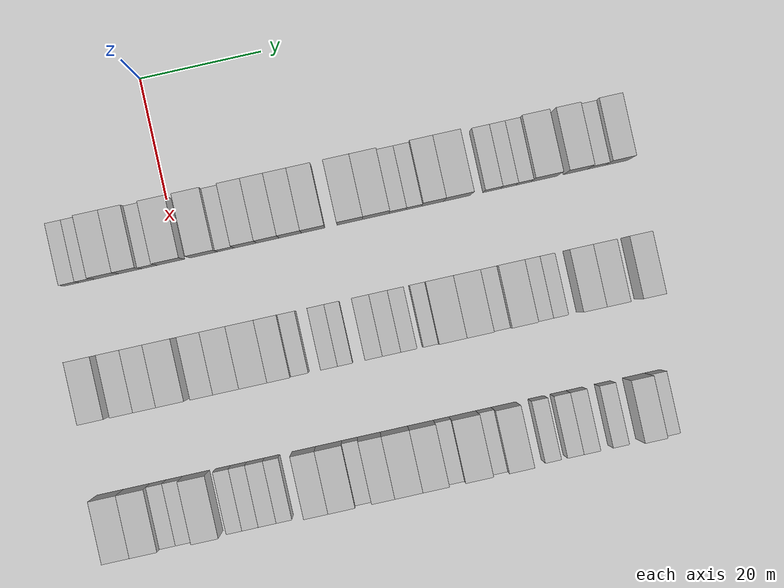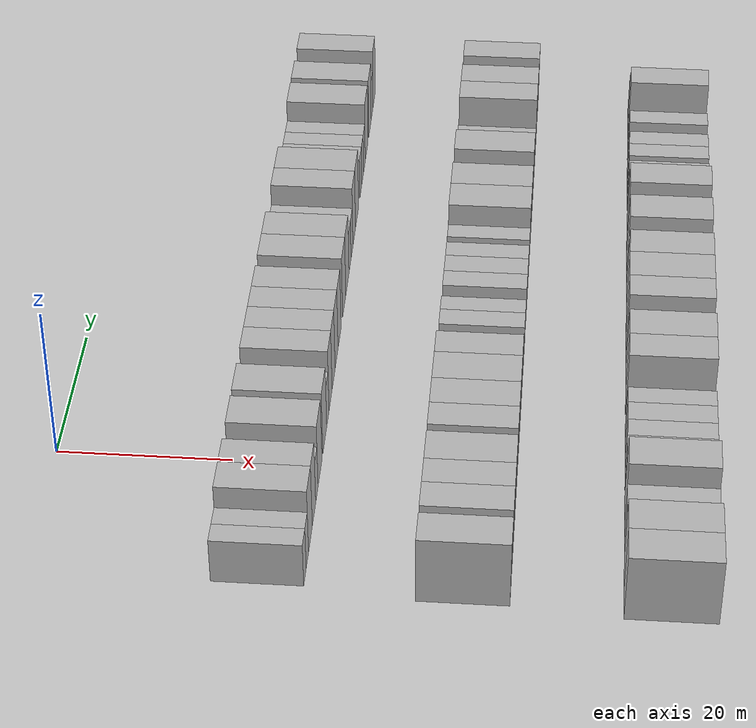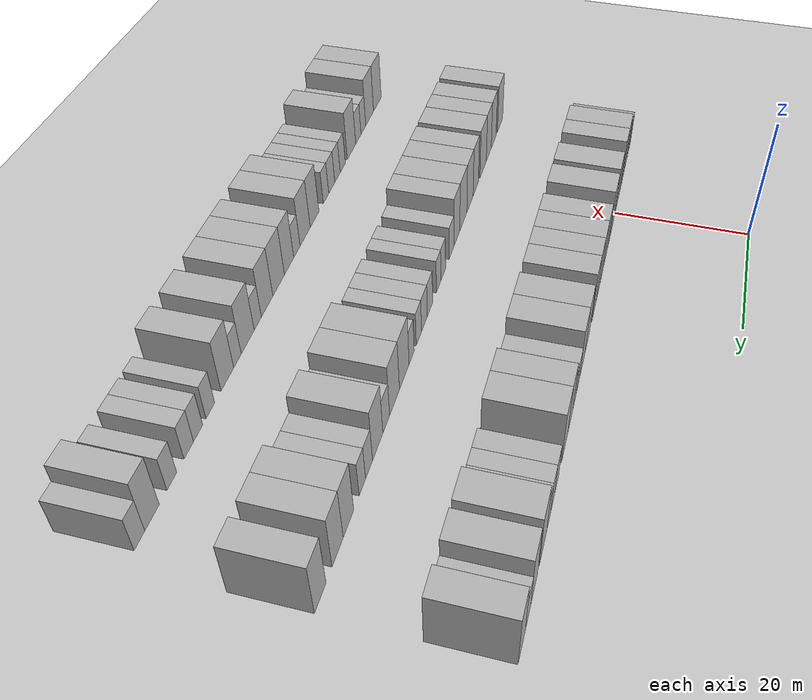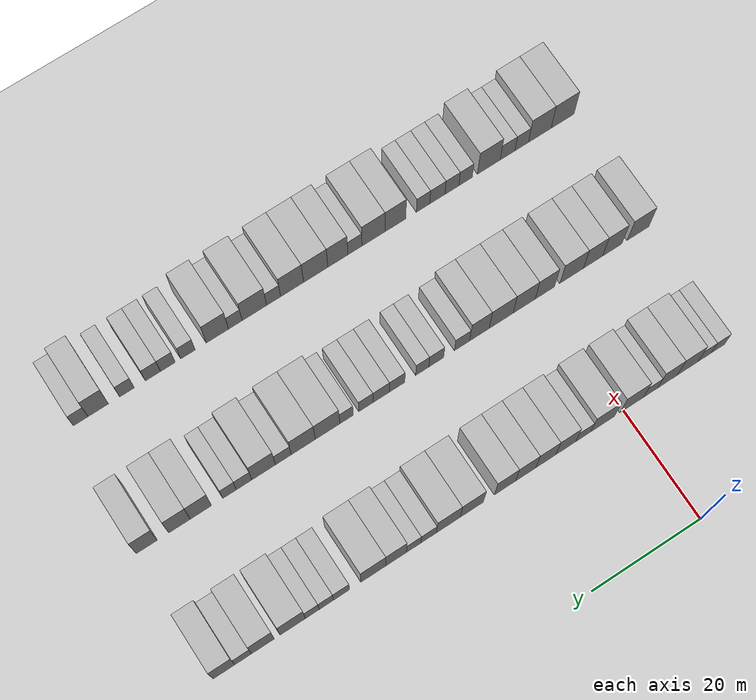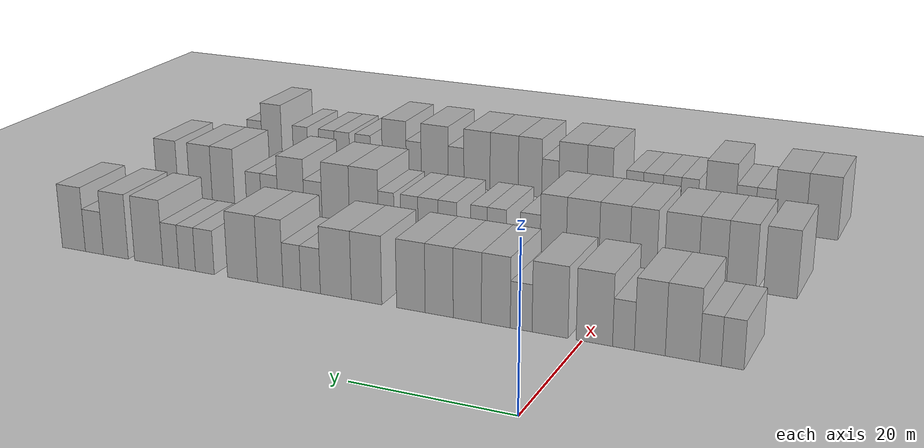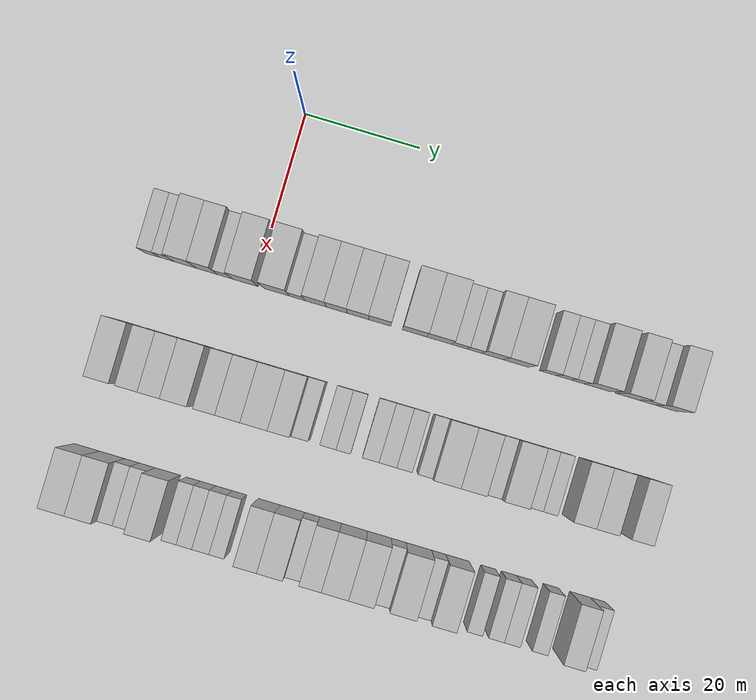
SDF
<sdf version="1.6">
 <world name="default">
  <include><name>ground_plane_1</name><uri>model://HANNAS_ground_plane</uri></include>
  <model name="building_81">
   <static>1</static>
   <pose>25.0000 -17.6948 0 0.000000 0.000000 0.000000</pose>
   <link name="link">
    <pose>0 0 3.00 0 0 0</pose>
    <collision name="collision"><geometry><box><size>10.0000 2.5695 6.0000</size></box></geometry></collision>
    <visual name="visual">
     <cast_shadows>0</cast_shadows>
     <geometry><box><size>10.0000 2.5695 6.0000</size></box></geometry>
     <material>
      <script>
       <uri>model://HANNAS_wall/materials/scripts</uri>
       <uri>model://HANNAS_wall/materials/textures</uri>
       <name>vrc/HANNAS_wall</name>
      </script>
     </material>
    </visual>
   </link>
  </model>
  <model name="building_82">
   <static>1</static>
   <pose>25.0000 -15.1681 0 0.000000 0.000000 0.000000</pose>
   <link name="link">
    <pose>0 0 3.00 0 0 0</pose>
    <collision name="collision"><geometry><box><size>10.0000 2.4840 6.0000</size></box></geometry></collision>
    <visual name="visual">
     <cast_shadows>0</cast_shadows>
     <geometry><box><size>10.0000 2.4840 6.0000</size></box></geometry>
     <material>
      <script>
       <uri>model://HANNAS_wall/materials/scripts</uri>
       <uri>model://HANNAS_wall/materials/textures</uri>
       <name>vrc/HANNAS_wall</name>
      </script>
     </material>
    </visual>
   </link>
  </model>
  <model name="building_83">
   <static>1</static>
   <pose>25.0000 -11.9271 0 0.000000 0.000000 0.000000</pose>
   <link name="link">
    <pose>0 0 4.50 0 0 0</pose>
    <collision name="collision"><geometry><box><size>10.0000 3.9980 9.0000</size></box></geometry></collision>
    <visual name="visual">
     <cast_shadows>0</cast_shadows>
     <geometry><box><size>10.0000 3.9980 9.0000</size></box></geometry>
     <material>
      <script>
       <uri>model://HANNAS_wall/materials/scripts</uri>
       <uri>model://HANNAS_wall/materials/textures</uri>
       <name>vrc/HANNAS_wall</name>
      </script>
     </material>
    </visual>
   </link>
  </model>
  <model name="building_84">
   <static>1</static>
   <pose>25.0000 -8.1058 0 0.000000 0.000000 0.000000</pose>
   <link name="link">
    <pose>0 0 4.50 0 0 0</pose>
    <collision name="collision"><geometry><box><size>10.0000 3.6445 9.0000</size></box></geometry></collision>
    <visual name="visual">
     <cast_shadows>0</cast_shadows>
     <geometry><box><size>10.0000 3.6445 9.0000</size></box></geometry>
     <material>
      <script>
       <uri>model://HANNAS_wall/materials/scripts</uri>
       <uri>model://HANNAS_wall/materials/textures</uri>
       <name>vrc/HANNAS_wall</name>
      </script>
     </material>
    </visual>
   </link>
  </model>
  <model name="building_85">
   <static>1</static>
   <pose>25.0000 -4.9752 0 0.000000 0.000000 0.000000</pose>
   <link name="link">
    <pose>0 0 3.00 0 0 0</pose>
    <collision name="collision"><geometry><box><size>10.0000 2.6166 6.0000</size></box></geometry></collision>
    <visual name="visual">
     <cast_shadows>0</cast_shadows>
     <geometry><box><size>10.0000 2.6166 6.0000</size></box></geometry>
     <material>
      <script>
       <uri>model://HANNAS_wall/materials/scripts</uri>
       <uri>model://HANNAS_wall/materials/textures</uri>
       <name>vrc/HANNAS_wall</name>
      </script>
     </material>
    </visual>
   </link>
  </model>
  <model name="building_86">
   <static>1</static>
   <pose>25.0000 -1.4535 0 0.000000 0.000000 0.000000</pose>
   <link name="link">
    <pose>0 0 4.50 0 0 0</pose>
    <collision name="collision"><geometry><box><size>10.0000 4.4270 9.0000</size></box></geometry></collision>
    <visual name="visual">
     <cast_shadows>0</cast_shadows>
     <geometry><box><size>10.0000 4.4270 9.0000</size></box></geometry>
     <material>
      <script>
       <uri>model://HANNAS_wall/materials/scripts</uri>
       <uri>model://HANNAS_wall/materials/textures</uri>
       <name>vrc/HANNAS_wall</name>
      </script>
     </material>
    </visual>
   </link>
  </model>
  <model name="building_87">
   <static>1</static>
   <pose>25.0000 3.9975 0 0.000000 0.000000 0.000000</pose>
   <link name="link">
    <pose>0 0 4.50 0 0 0</pose>
    <collision name="collision"><geometry><box><size>10.0000 4.4749 9.0000</size></box></geometry></collision>
    <visual name="visual">
     <cast_shadows>0</cast_shadows>
     <geometry><box><size>10.0000 4.4749 9.0000</size></box></geometry>
     <material>
      <script>
       <uri>model://HANNAS_wall/materials/scripts</uri>
       <uri>model://HANNAS_wall/materials/textures</uri>
       <name>vrc/HANNAS_wall</name>
      </script>
     </material>
    </visual>
   </link>
  </model>
  <model name="building_88">
   <static>1</static>
   <pose>25.0000 7.6096 0 0.000000 0.000000 0.000000</pose>
   <link name="link">
    <pose>0 0 3.00 0 0 0</pose>
    <collision name="collision"><geometry><box><size>10.0000 2.7493 6.0000</size></box></geometry></collision>
    <visual name="visual">
     <cast_shadows>0</cast_shadows>
     <geometry><box><size>10.0000 2.7493 6.0000</size></box></geometry>
     <material>
      <script>
       <uri>model://HANNAS_wall/materials/scripts</uri>
       <uri>model://HANNAS_wall/materials/textures</uri>
       <name>vrc/HANNAS_wall</name>
      </script>
     </material>
    </visual>
   </link>
  </model>
  <model name="building_89">
   <static>1</static>
   <pose>25.0000 10.8346 0 0.000000 0.000000 0.000000</pose>
   <link name="link">
    <pose>0 0 4.50 0 0 0</pose>
    <collision name="collision"><geometry><box><size>10.0000 3.7008 9.0000</size></box></geometry></collision>
    <visual name="visual">
     <cast_shadows>0</cast_shadows>
     <geometry><box><size>10.0000 3.7008 9.0000</size></box></geometry>
     <material>
      <script>
       <uri>model://HANNAS_wall/materials/scripts</uri>
       <uri>model://HANNAS_wall/materials/textures</uri>
       <name>vrc/HANNAS_wall</name>
      </script>
     </material>
    </visual>
   </link>
  </model>
  <model name="building_90">
   <static>1</static>
   <pose>25.0000 14.5220 0 0.000000 0.000000 0.000000</pose>
   <link name="link">
    <pose>0 0 4.50 0 0 0</pose>
    <collision name="collision"><geometry><box><size>10.0000 3.6740 9.0000</size></box></geometry></collision>
    <visual name="visual">
     <cast_shadows>0</cast_shadows>
     <geometry><box><size>10.0000 3.6740 9.0000</size></box></geometry>
     <material>
      <script>
       <uri>model://HANNAS_wall/materials/scripts</uri>
       <uri>model://HANNAS_wall/materials/textures</uri>
       <name>vrc/HANNAS_wall</name>
      </script>
     </material>
    </visual>
   </link>
  </model>
  <model name="building_91">
   <static>1</static>
   <pose>25.0000 18.2119 0 0.000000 0.000000 0.000000</pose>
   <link name="link">
    <pose>0 0 4.50 0 0 0</pose>
    <collision name="collision"><geometry><box><size>10.0000 3.7057 9.0000</size></box></geometry></collision>
    <visual name="visual">
     <cast_shadows>0</cast_shadows>
     <geometry><box><size>10.0000 3.7057 9.0000</size></box></geometry>
     <material>
      <script>
       <uri>model://HANNAS_wall/materials/scripts</uri>
       <uri>model://HANNAS_wall/materials/textures</uri>
       <name>vrc/HANNAS_wall</name>
      </script>
     </material>
    </visual>
   </link>
  </model>
  <model name="building_92">
   <static>1</static>
   <pose>25.0000 21.9844 0 0.000000 0.000000 0.000000</pose>
   <link name="link">
    <pose>0 0 4.50 0 0 0</pose>
    <collision name="collision"><geometry><box><size>10.0000 3.8393 9.0000</size></box></geometry></collision>
    <visual name="visual">
     <cast_shadows>0</cast_shadows>
     <geometry><box><size>10.0000 3.8393 9.0000</size></box></geometry>
     <material>
      <script>
       <uri>model://HANNAS_wall/materials/scripts</uri>
       <uri>model://HANNAS_wall/materials/textures</uri>
       <name>vrc/HANNAS_wall</name>
      </script>
     </material>
    </visual>
   </link>
  </model>
  <model name="building_93">
   <static>1</static>
   <pose>25.0000 28.0033 0 0.000000 0.000000 0.000000</pose>
   <link name="link">
    <pose>0 0 4.50 0 0 0</pose>
    <collision name="collision"><geometry><box><size>10.0000 4.1986 9.0000</size></box></geometry></collision>
    <visual name="visual">
     <cast_shadows>0</cast_shadows>
     <geometry><box><size>10.0000 4.1986 9.0000</size></box></geometry>
     <material>
      <script>
       <uri>model://HANNAS_wall/materials/scripts</uri>
       <uri>model://HANNAS_wall/materials/textures</uri>
       <name>vrc/HANNAS_wall</name>
      </script>
     </material>
    </visual>
   </link>
  </model>
  <model name="building_94">
   <static>1</static>
   <pose>25.0000 32.2684 0 0.000000 0.000000 0.000000</pose>
   <link name="link">
    <pose>0 0 4.50 0 0 0</pose>
    <collision name="collision"><geometry><box><size>10.0000 4.3316 9.0000</size></box></geometry></collision>
    <visual name="visual">
     <cast_shadows>0</cast_shadows>
     <geometry><box><size>10.0000 4.3316 9.0000</size></box></geometry>
     <material>
      <script>
       <uri>model://HANNAS_wall/materials/scripts</uri>
       <uri>model://HANNAS_wall/materials/textures</uri>
       <name>vrc/HANNAS_wall</name>
      </script>
     </material>
    </visual>
   </link>
  </model>
  <model name="building_95">
   <static>1</static>
   <pose>25.0000 35.8230 0 0.000000 0.000000 0.000000</pose>
   <link name="link">
    <pose>0 0 3.00 0 0 0</pose>
    <collision name="collision"><geometry><box><size>10.0000 2.7774 6.0000</size></box></geometry></collision>
    <visual name="visual">
     <cast_shadows>0</cast_shadows>
     <geometry><box><size>10.0000 2.7774 6.0000</size></box></geometry>
     <material>
      <script>
       <uri>model://HANNAS_wall/materials/scripts</uri>
       <uri>model://HANNAS_wall/materials/textures</uri>
       <name>vrc/HANNAS_wall</name>
      </script>
     </material>
    </visual>
   </link>
  </model>
  <model name="building_96">
   <static>1</static>
   <pose>25.0000 38.4920 0 0.000000 0.000000 0.000000</pose>
   <link name="link">
    <pose>0 0 3.00 0 0 0</pose>
    <collision name="collision"><geometry><box><size>10.0000 2.5607 6.0000</size></box></geometry></collision>
    <visual name="visual">
     <cast_shadows>0</cast_shadows>
     <geometry><box><size>10.0000 2.5607 6.0000</size></box></geometry>
     <material>
      <script>
       <uri>model://HANNAS_wall/materials/scripts</uri>
       <uri>model://HANNAS_wall/materials/textures</uri>
       <name>vrc/HANNAS_wall</name>
      </script>
     </material>
    </visual>
   </link>
  </model>
  <model name="building_97">
   <static>1</static>
   <pose>25.0000 41.6229 0 0.000000 0.000000 0.000000</pose>
   <link name="link">
    <pose>0 0 4.50 0 0 0</pose>
    <collision name="collision"><geometry><box><size>10.0000 3.7011 9.0000</size></box></geometry></collision>
    <visual name="visual">
     <cast_shadows>0</cast_shadows>
     <geometry><box><size>10.0000 3.7011 9.0000</size></box></geometry>
     <material>
      <script>
       <uri>model://HANNAS_wall/materials/scripts</uri>
       <uri>model://HANNAS_wall/materials/textures</uri>
       <name>vrc/HANNAS_wall</name>
      </script>
     </material>
    </visual>
   </link>
  </model>
  <model name="building_98">
   <static>1</static>
   <pose>25.0000 45.6919 0 0.000000 0.000000 0.000000</pose>
   <link name="link">
    <pose>0 0 4.50 0 0 0</pose>
    <collision name="collision"><geometry><box><size>10.0000 4.4369 9.0000</size></box></geometry></collision>
    <visual name="visual">
     <cast_shadows>0</cast_shadows>
     <geometry><box><size>10.0000 4.4369 9.0000</size></box></geometry>
     <material>
      <script>
       <uri>model://HANNAS_wall/materials/scripts</uri>
       <uri>model://HANNAS_wall/materials/textures</uri>
       <name>vrc/HANNAS_wall</name>
      </script>
     </material>
    </visual>
   </link>
  </model>
  <model name="building_99">
   <static>1</static>
   <pose>25.0000 51.3300 0 0.000000 0.000000 0.000000</pose>
   <link name="link">
    <pose>0 0 3.00 0 0 0</pose>
    <collision name="collision"><geometry><box><size>10.0000 2.8393 6.0000</size></box></geometry></collision>
    <visual name="visual">
     <cast_shadows>0</cast_shadows>
     <geometry><box><size>10.0000 2.8393 6.0000</size></box></geometry>
     <material>
      <script>
       <uri>model://HANNAS_wall/materials/scripts</uri>
       <uri>model://HANNAS_wall/materials/textures</uri>
       <name>vrc/HANNAS_wall</name>
      </script>
     </material>
    </visual>
   </link>
  </model>
  <model name="building_100">
   <static>1</static>
   <pose>25.0000 54.0143 0 0.000000 0.000000 0.000000</pose>
   <link name="link">
    <pose>0 0 3.00 0 0 0</pose>
    <collision name="collision"><geometry><box><size>10.0000 2.5292 6.0000</size></box></geometry></collision>
    <visual name="visual">
     <cast_shadows>0</cast_shadows>
     <geometry><box><size>10.0000 2.5292 6.0000</size></box></geometry>
     <material>
      <script>
       <uri>model://HANNAS_wall/materials/scripts</uri>
       <uri>model://HANNAS_wall/materials/textures</uri>
       <name>vrc/HANNAS_wall</name>
      </script>
     </material>
    </visual>
   </link>
  </model>
  <model name="building_101">
   <static>1</static>
   <pose>25.0000 56.5057 0 0.000000 0.000000 0.000000</pose>
   <link name="link">
    <pose>0 0 3.00 0 0 0</pose>
    <collision name="collision"><geometry><box><size>10.0000 2.4537 6.0000</size></box></geometry></collision>
    <visual name="visual">
     <cast_shadows>0</cast_shadows>
     <geometry><box><size>10.0000 2.4537 6.0000</size></box></geometry>
     <material>
      <script>
       <uri>model://HANNAS_wall/materials/scripts</uri>
       <uri>model://HANNAS_wall/materials/textures</uri>
       <name>vrc/HANNAS_wall</name>
      </script>
     </material>
    </visual>
   </link>
  </model>
  <model name="building_102">
   <static>1</static>
   <pose>25.0000 59.9404 0 0.000000 0.000000 0.000000</pose>
   <link name="link">
    <pose>0 0 4.50 0 0 0</pose>
    <collision name="collision"><geometry><box><size>10.0000 4.4157 9.0000</size></box></geometry></collision>
    <visual name="visual">
     <cast_shadows>0</cast_shadows>
     <geometry><box><size>10.0000 4.4157 9.0000</size></box></geometry>
     <material>
      <script>
       <uri>model://HANNAS_wall/materials/scripts</uri>
       <uri>model://HANNAS_wall/materials/textures</uri>
       <name>vrc/HANNAS_wall</name>
      </script>
     </material>
    </visual>
   </link>
  </model>
  <model name="building_103">
   <static>1</static>
   <pose>25.0000 65.1345 0 0.000000 0.000000 0.000000</pose>
   <link name="link">
    <pose>0 0 4.50 0 0 0</pose>
    <collision name="collision"><geometry><box><size>10.0000 3.9724 9.0000</size></box></geometry></collision>
    <visual name="visual">
     <cast_shadows>0</cast_shadows>
     <geometry><box><size>10.0000 3.9724 9.0000</size></box></geometry>
     <material>
      <script>
       <uri>model://HANNAS_wall/materials/scripts</uri>
       <uri>model://HANNAS_wall/materials/textures</uri>
       <name>vrc/HANNAS_wall</name>
      </script>
     </material>
    </visual>
   </link>
  </model>
  <model name="building_104">
   <static>1</static>
   <pose>25.0000 68.5688 0 0.000000 0.000000 0.000000</pose>
   <link name="link">
    <pose>0 0 3.00 0 0 0</pose>
    <collision name="collision"><geometry><box><size>10.0000 2.8962 6.0000</size></box></geometry></collision>
    <visual name="visual">
     <cast_shadows>0</cast_shadows>
     <geometry><box><size>10.0000 2.8962 6.0000</size></box></geometry>
     <material>
      <script>
       <uri>model://HANNAS_wall/materials/scripts</uri>
       <uri>model://HANNAS_wall/materials/textures</uri>
       <name>vrc/HANNAS_wall</name>
      </script>
     </material>
    </visual>
   </link>
  </model>
  <model name="building_105">
   <static>1</static>
   <pose>25.0000 71.8922 0 0.000000 0.000000 0.000000</pose>
   <link name="link">
    <pose>0 0 4.50 0 0 0</pose>
    <collision name="collision"><geometry><box><size>10.0000 3.7506 9.0000</size></box></geometry></collision>
    <visual name="visual">
     <cast_shadows>0</cast_shadows>
     <geometry><box><size>10.0000 3.7506 9.0000</size></box></geometry>
     <material>
      <script>
       <uri>model://HANNAS_wall/materials/scripts</uri>
       <uri>model://HANNAS_wall/materials/textures</uri>
       <name>vrc/HANNAS_wall</name>
      </script>
     </material>
    </visual>
   </link>
  </model>
  <model name="building_258">
   <static>1</static>
   <pose>47.0000 -18.2375 0 0.000000 0.000000 0.000000</pose>
   <link name="link">
    <pose>0 0 4.50 0 0 0</pose>
    <collision name="collision"><geometry><box><size>10.0000 4.1795 9.0000</size></box></geometry></collision>
    <visual name="visual">
     <cast_shadows>0</cast_shadows>
     <geometry><box><size>10.0000 4.1795 9.0000</size></box></geometry>
     <material>
      <script>
       <uri>model://HANNAS_wall/materials/scripts</uri>
       <uri>model://HANNAS_wall/materials/textures</uri>
       <name>vrc/HANNAS_wall</name>
      </script>
     </material>
    </visual>
   </link>
  </model>
  <model name="building_259">
   <static>1</static>
   <pose>47.0000 -13.2935 0 0.000000 0.000000 0.000000</pose>
   <link name="link">
    <pose>0 0 4.50 0 0 0</pose>
    <collision name="collision"><geometry><box><size>10.0000 3.7084 9.0000</size></box></geometry></collision>
    <visual name="visual">
     <cast_shadows>0</cast_shadows>
     <geometry><box><size>10.0000 3.7084 9.0000</size></box></geometry>
     <material>
      <script>
       <uri>model://HANNAS_wall/materials/scripts</uri>
       <uri>model://HANNAS_wall/materials/textures</uri>
       <name>vrc/HANNAS_wall</name>
      </script>
     </material>
    </visual>
   </link>
  </model>
  <model name="building_260">
   <static>1</static>
   <pose>47.0000 -9.6096 0 0.000000 0.000000 0.000000</pose>
   <link name="link">
    <pose>0 0 4.50 0 0 0</pose>
    <collision name="collision"><geometry><box><size>10.0000 3.6594 9.0000</size></box></geometry></collision>
    <visual name="visual">
     <cast_shadows>0</cast_shadows>
     <geometry><box><size>10.0000 3.6594 9.0000</size></box></geometry>
     <material>
      <script>
       <uri>model://HANNAS_wall/materials/scripts</uri>
       <uri>model://HANNAS_wall/materials/textures</uri>
       <name>vrc/HANNAS_wall</name>
      </script>
     </material>
    </visual>
   </link>
  </model>
  <model name="building_261">
   <static>1</static>
   <pose>47.0000 -5.5520 0 0.000000 0.000000 0.000000</pose>
   <link name="link">
    <pose>0 0 4.50 0 0 0</pose>
    <collision name="collision"><geometry><box><size>10.0000 4.4558 9.0000</size></box></geometry></collision>
    <visual name="visual">
     <cast_shadows>0</cast_shadows>
     <geometry><box><size>10.0000 4.4558 9.0000</size></box></geometry>
     <material>
      <script>
       <uri>model://HANNAS_wall/materials/scripts</uri>
       <uri>model://HANNAS_wall/materials/textures</uri>
       <name>vrc/HANNAS_wall</name>
      </script>
     </material>
    </visual>
   </link>
  </model>
  <model name="building_262">
   <static>1</static>
   <pose>47.0000 -0.5047 0 0.000000 0.000000 0.000000</pose>
   <link name="link">
    <pose>0 0 4.50 0 0 0</pose>
    <collision name="collision"><geometry><box><size>10.0000 3.6387 9.0000</size></box></geometry></collision>
    <visual name="visual">
     <cast_shadows>0</cast_shadows>
     <geometry><box><size>10.0000 3.6387 9.0000</size></box></geometry>
     <material>
      <script>
       <uri>model://HANNAS_wall/materials/scripts</uri>
       <uri>model://HANNAS_wall/materials/textures</uri>
       <name>vrc/HANNAS_wall</name>
      </script>
     </material>
    </visual>
   </link>
  </model>
  <model name="building_263">
   <static>1</static>
   <pose>47.0000 3.3815 0 0.000000 0.000000 0.000000</pose>
   <link name="link">
    <pose>0 0 4.50 0 0 0</pose>
    <collision name="collision"><geometry><box><size>10.0000 4.1338 9.0000</size></box></geometry></collision>
    <visual name="visual">
     <cast_shadows>0</cast_shadows>
     <geometry><box><size>10.0000 4.1338 9.0000</size></box></geometry>
     <material>
      <script>
       <uri>model://HANNAS_wall/materials/scripts</uri>
       <uri>model://HANNAS_wall/materials/textures</uri>
       <name>vrc/HANNAS_wall</name>
      </script>
     </material>
    </visual>
   </link>
  </model>
  <model name="building_264">
   <static>1</static>
   <pose>47.0000 7.6974 0 0.000000 0.000000 0.000000</pose>
   <link name="link">
    <pose>0 0 4.50 0 0 0</pose>
    <collision name="collision"><geometry><box><size>10.0000 4.4980 9.0000</size></box></geometry></collision>
    <visual name="visual">
     <cast_shadows>0</cast_shadows>
     <geometry><box><size>10.0000 4.4980 9.0000</size></box></geometry>
     <material>
      <script>
       <uri>model://HANNAS_wall/materials/scripts</uri>
       <uri>model://HANNAS_wall/materials/textures</uri>
       <name>vrc/HANNAS_wall</name>
      </script>
     </material>
    </visual>
   </link>
  </model>
  <model name="building_265">
   <static>1</static>
   <pose>47.0000 11.7715 0 0.000000 0.000000 0.000000</pose>
   <link name="link">
    <pose>0 0 4.50 0 0 0</pose>
    <collision name="collision"><geometry><box><size>10.0000 3.6501 9.0000</size></box></geometry></collision>
    <visual name="visual">
     <cast_shadows>0</cast_shadows>
     <geometry><box><size>10.0000 3.6501 9.0000</size></box></geometry>
     <material>
      <script>
       <uri>model://HANNAS_wall/materials/scripts</uri>
       <uri>model://HANNAS_wall/materials/textures</uri>
       <name>vrc/HANNAS_wall</name>
      </script>
     </material>
    </visual>
   </link>
  </model>
  <model name="building_266">
   <static>1</static>
   <pose>47.0000 15.0014 0 0.000000 0.000000 0.000000</pose>
   <link name="link">
    <pose>0 0 3.00 0 0 0</pose>
    <collision name="collision"><geometry><box><size>10.0000 2.8097 6.0000</size></box></geometry></collision>
    <visual name="visual">
     <cast_shadows>0</cast_shadows>
     <geometry><box><size>10.0000 2.8097 6.0000</size></box></geometry>
     <material>
      <script>
       <uri>model://HANNAS_wall/materials/scripts</uri>
       <uri>model://HANNAS_wall/materials/textures</uri>
       <name>vrc/HANNAS_wall</name>
      </script>
     </material>
    </visual>
   </link>
  </model>
  <model name="building_267">
   <static>1</static>
   <pose>47.0000 19.7721 0 0.000000 0.000000 0.000000</pose>
   <link name="link">
    <pose>0 0 3.00 0 0 0</pose>
    <collision name="collision"><geometry><box><size>10.0000 2.7318 6.0000</size></box></geometry></collision>
    <visual name="visual">
     <cast_shadows>0</cast_shadows>
     <geometry><box><size>10.0000 2.7318 6.0000</size></box></geometry>
     <material>
      <script>
       <uri>model://HANNAS_wall/materials/scripts</uri>
       <uri>model://HANNAS_wall/materials/textures</uri>
       <name>vrc/HANNAS_wall</name>
      </script>
     </material>
    </visual>
   </link>
  </model>
  <model name="building_268">
   <static>1</static>
   <pose>47.0000 22.3528 0 0.000000 0.000000 0.000000</pose>
   <link name="link">
    <pose>0 0 3.00 0 0 0</pose>
    <collision name="collision"><geometry><box><size>10.0000 2.4296 6.0000</size></box></geometry></collision>
    <visual name="visual">
     <cast_shadows>0</cast_shadows>
     <geometry><box><size>10.0000 2.4296 6.0000</size></box></geometry>
     <material>
      <script>
       <uri>model://HANNAS_wall/materials/scripts</uri>
       <uri>model://HANNAS_wall/materials/textures</uri>
       <name>vrc/HANNAS_wall</name>
      </script>
     </material>
    </visual>
   </link>
  </model>
  <model name="building_269">
   <static>1</static>
   <pose>47.0000 26.9706 0 0.000000 0.000000 0.000000</pose>
   <link name="link">
    <pose>0 0 3.00 0 0 0</pose>
    <collision name="collision"><geometry><box><size>10.0000 2.8060 6.0000</size></box></geometry></collision>
    <visual name="visual">
     <cast_shadows>0</cast_shadows>
     <geometry><box><size>10.0000 2.8060 6.0000</size></box></geometry>
     <material>
      <script>
       <uri>model://HANNAS_wall/materials/scripts</uri>
       <uri>model://HANNAS_wall/materials/textures</uri>
       <name>vrc/HANNAS_wall</name>
      </script>
     </material>
    </visual>
   </link>
  </model>
  <model name="building_270">
   <static>1</static>
   <pose>47.0000 29.8652 0 0.000000 0.000000 0.000000</pose>
   <link name="link">
    <pose>0 0 3.00 0 0 0</pose>
    <collision name="collision"><geometry><box><size>10.0000 2.9833 6.0000</size></box></geometry></collision>
    <visual name="visual">
     <cast_shadows>0</cast_shadows>
     <geometry><box><size>10.0000 2.9833 6.0000</size></box></geometry>
     <material>
      <script>
       <uri>model://HANNAS_wall/materials/scripts</uri>
       <uri>model://HANNAS_wall/materials/textures</uri>
       <name>vrc/HANNAS_wall</name>
      </script>
     </material>
    </visual>
   </link>
  </model>
  <model name="building_271">
   <static>1</static>
   <pose>47.0000 32.6630 0 0.000000 0.000000 0.000000</pose>
   <link name="link">
    <pose>0 0 3.00 0 0 0</pose>
    <collision name="collision"><geometry><box><size>10.0000 2.6123 6.0000</size></box></geometry></collision>
    <visual name="visual">
     <cast_shadows>0</cast_shadows>
     <geometry><box><size>10.0000 2.6123 6.0000</size></box></geometry>
     <material>
      <script>
       <uri>model://HANNAS_wall/materials/scripts</uri>
       <uri>model://HANNAS_wall/materials/textures</uri>
       <name>vrc/HANNAS_wall</name>
      </script>
     </material>
    </visual>
   </link>
  </model>
  <model name="building_272">
   <static>1</static>
   <pose>47.0000 36.1849 0 0.000000 0.000000 0.000000</pose>
   <link name="link">
    <pose>0 0 3.00 0 0 0</pose>
    <collision name="collision"><geometry><box><size>10.0000 2.4316 6.0000</size></box></geometry></collision>
    <visual name="visual">
     <cast_shadows>0</cast_shadows>
     <geometry><box><size>10.0000 2.4316 6.0000</size></box></geometry>
     <material>
      <script>
       <uri>model://HANNAS_wall/materials/scripts</uri>
       <uri>model://HANNAS_wall/materials/textures</uri>
       <name>vrc/HANNAS_wall</name>
      </script>
     </material>
    </visual>
   </link>
  </model>
  <model name="building_273">
   <static>1</static>
   <pose>47.0000 39.6280 0 0.000000 0.000000 0.000000</pose>
   <link name="link">
    <pose>0 0 4.50 0 0 0</pose>
    <collision name="collision"><geometry><box><size>10.0000 4.4545 9.0000</size></box></geometry></collision>
    <visual name="visual">
     <cast_shadows>0</cast_shadows>
     <geometry><box><size>10.0000 4.4545 9.0000</size></box></geometry>
     <material>
      <script>
       <uri>model://HANNAS_wall/materials/scripts</uri>
       <uri>model://HANNAS_wall/materials/textures</uri>
       <name>vrc/HANNAS_wall</name>
      </script>
     </material>
    </visual>
   </link>
  </model>
  <model name="building_274">
   <static>1</static>
   <pose>47.0000 44.0167 0 0.000000 0.000000 0.000000</pose>
   <link name="link">
    <pose>0 0 4.50 0 0 0</pose>
    <collision name="collision"><geometry><box><size>10.0000 4.3230 9.0000</size></box></geometry></collision>
    <visual name="visual">
     <cast_shadows>0</cast_shadows>
     <geometry><box><size>10.0000 4.3230 9.0000</size></box></geometry>
     <material>
      <script>
       <uri>model://HANNAS_wall/materials/scripts</uri>
       <uri>model://HANNAS_wall/materials/textures</uri>
       <name>vrc/HANNAS_wall</name>
      </script>
     </material>
    </visual>
   </link>
  </model>
  <model name="building_275">
   <static>1</static>
   <pose>47.0000 47.6026 0 0.000000 0.000000 0.000000</pose>
   <link name="link">
    <pose>0 0 3.00 0 0 0</pose>
    <collision name="collision"><geometry><box><size>10.0000 2.8487 6.0000</size></box></geometry></collision>
    <visual name="visual">
     <cast_shadows>0</cast_shadows>
     <geometry><box><size>10.0000 2.8487 6.0000</size></box></geometry>
     <material>
      <script>
       <uri>model://HANNAS_wall/materials/scripts</uri>
       <uri>model://HANNAS_wall/materials/textures</uri>
       <name>vrc/HANNAS_wall</name>
      </script>
     </material>
    </visual>
   </link>
  </model>
  <model name="building_276">
   <static>1</static>
   <pose>47.0000 51.1401 0 0.000000 0.000000 0.000000</pose>
   <link name="link">
    <pose>0 0 4.50 0 0 0</pose>
    <collision name="collision"><geometry><box><size>10.0000 4.2263 9.0000</size></box></geometry></collision>
    <visual name="visual">
     <cast_shadows>0</cast_shadows>
     <geometry><box><size>10.0000 4.2263 9.0000</size></box></geometry>
     <material>
      <script>
       <uri>model://HANNAS_wall/materials/scripts</uri>
       <uri>model://HANNAS_wall/materials/textures</uri>
       <name>vrc/HANNAS_wall</name>
      </script>
     </material>
    </visual>
   </link>
  </model>
  <model name="building_277">
   <static>1</static>
   <pose>47.0000 54.6216 0 0.000000 0.000000 0.000000</pose>
   <link name="link">
    <pose>0 0 3.00 0 0 0</pose>
    <collision name="collision"><geometry><box><size>10.0000 2.7366 6.0000</size></box></geometry></collision>
    <visual name="visual">
     <cast_shadows>0</cast_shadows>
     <geometry><box><size>10.0000 2.7366 6.0000</size></box></geometry>
     <material>
      <script>
       <uri>model://HANNAS_wall/materials/scripts</uri>
       <uri>model://HANNAS_wall/materials/textures</uri>
       <name>vrc/HANNAS_wall</name>
      </script>
     </material>
    </visual>
   </link>
  </model>
  <model name="building_278">
   <static>1</static>
   <pose>47.0000 57.2012 0 0.000000 0.000000 0.000000</pose>
   <link name="link">
    <pose>0 0 3.00 0 0 0</pose>
    <collision name="collision"><geometry><box><size>10.0000 2.4226 6.0000</size></box></geometry></collision>
    <visual name="visual">
     <cast_shadows>0</cast_shadows>
     <geometry><box><size>10.0000 2.4226 6.0000</size></box></geometry>
     <material>
      <script>
       <uri>model://HANNAS_wall/materials/scripts</uri>
       <uri>model://HANNAS_wall/materials/textures</uri>
       <name>vrc/HANNAS_wall</name>
      </script>
     </material>
    </visual>
   </link>
  </model>
  <model name="building_279">
   <static>1</static>
   <pose>47.0000 62.2863 0 0.000000 0.000000 0.000000</pose>
   <link name="link">
    <pose>0 0 4.50 0 0 0</pose>
    <collision name="collision"><geometry><box><size>10.0000 3.7474 9.0000</size></box></geometry></collision>
    <visual name="visual">
     <cast_shadows>0</cast_shadows>
     <geometry><box><size>10.0000 3.7474 9.0000</size></box></geometry>
     <material>
      <script>
       <uri>model://HANNAS_wall/materials/scripts</uri>
       <uri>model://HANNAS_wall/materials/textures</uri>
       <name>vrc/HANNAS_wall</name>
      </script>
     </material>
    </visual>
   </link>
  </model>
  <model name="building_280">
   <static>1</static>
   <pose>47.0000 66.0606 0 0.000000 0.000000 0.000000</pose>
   <link name="link">
    <pose>0 0 4.50 0 0 0</pose>
    <collision name="collision"><geometry><box><size>10.0000 3.8013 9.0000</size></box></geometry></collision>
    <visual name="visual">
     <cast_shadows>0</cast_shadows>
     <geometry><box><size>10.0000 3.8013 9.0000</size></box></geometry>
     <material>
      <script>
       <uri>model://HANNAS_wall/materials/scripts</uri>
       <uri>model://HANNAS_wall/materials/textures</uri>
       <name>vrc/HANNAS_wall</name>
      </script>
     </material>
    </visual>
   </link>
  </model>
  <model name="building_281">
   <static>1</static>
   <pose>47.0000 71.7974 0 0.000000 0.000000 0.000000</pose>
   <link name="link">
    <pose>0 0 4.50 0 0 0</pose>
    <collision name="collision"><geometry><box><size>10.0000 3.6723 9.0000</size></box></geometry></collision>
    <visual name="visual">
     <cast_shadows>0</cast_shadows>
     <geometry><box><size>10.0000 3.6723 9.0000</size></box></geometry>
     <material>
      <script>
       <uri>model://HANNAS_wall/materials/scripts</uri>
       <uri>model://HANNAS_wall/materials/textures</uri>
       <name>vrc/HANNAS_wall</name>
      </script>
     </material>
    </visual>
   </link>
  </model>
  <model name="building_451">
   <static>1</static>
   <pose>69.0000 -19.1168 0 0.000000 0.000000 0.000000</pose>
   <link name="link">
    <pose>0 0 4.50 0 0 0</pose>
    <collision name="collision"><geometry><box><size>10.0000 4.4330 9.0000</size></box></geometry></collision>
    <visual name="visual">
     <cast_shadows>0</cast_shadows>
     <geometry><box><size>10.0000 4.4330 9.0000</size></box></geometry>
     <material>
      <script>
       <uri>model://HANNAS_wall/materials/scripts</uri>
       <uri>model://HANNAS_wall/materials/textures</uri>
       <name>vrc/HANNAS_wall</name>
      </script>
     </material>
    </visual>
   </link>
  </model>
  <model name="building_452">
   <static>1</static>
   <pose>69.0000 -14.6964 0 0.000000 0.000000 0.000000</pose>
   <link name="link">
    <pose>0 0 4.50 0 0 0</pose>
    <collision name="collision"><geometry><box><size>10.0000 4.4078 9.0000</size></box></geometry></collision>
    <visual name="visual">
     <cast_shadows>0</cast_shadows>
     <geometry><box><size>10.0000 4.4078 9.0000</size></box></geometry>
     <material>
      <script>
       <uri>model://HANNAS_wall/materials/scripts</uri>
       <uri>model://HANNAS_wall/materials/textures</uri>
       <name>vrc/HANNAS_wall</name>
      </script>
     </material>
    </visual>
   </link>
  </model>
  <model name="building_453">
   <static>1</static>
   <pose>69.0000 -11.1977 0 0.000000 0.000000 0.000000</pose>
   <link name="link">
    <pose>0 0 3.00 0 0 0</pose>
    <collision name="collision"><geometry><box><size>10.0000 2.5894 6.0000</size></box></geometry></collision>
    <visual name="visual">
     <cast_shadows>0</cast_shadows>
     <geometry><box><size>10.0000 2.5894 6.0000</size></box></geometry>
     <material>
      <script>
       <uri>model://HANNAS_wall/materials/scripts</uri>
       <uri>model://HANNAS_wall/materials/textures</uri>
       <name>vrc/HANNAS_wall</name>
      </script>
     </material>
    </visual>
   </link>
  </model>
  <model name="building_454">
   <static>1</static>
   <pose>69.0000 -8.4968 0 0.000000 0.000000 0.000000</pose>
   <link name="link">
    <pose>0 0 3.00 0 0 0</pose>
    <collision name="collision"><geometry><box><size>10.0000 2.8125 6.0000</size></box></geometry></collision>
    <visual name="visual">
     <cast_shadows>0</cast_shadows>
     <geometry><box><size>10.0000 2.8125 6.0000</size></box></geometry>
     <material>
      <script>
       <uri>model://HANNAS_wall/materials/scripts</uri>
       <uri>model://HANNAS_wall/materials/textures</uri>
       <name>vrc/HANNAS_wall</name>
      </script>
     </material>
    </visual>
   </link>
  </model>
  <model name="building_455">
   <static>1</static>
   <pose>69.0000 -4.9099 0 0.000000 0.000000 0.000000</pose>
   <link name="link">
    <pose>0 0 4.50 0 0 0</pose>
    <collision name="collision"><geometry><box><size>10.0000 4.3611 9.0000</size></box></geometry></collision>
    <visual name="visual">
     <cast_shadows>0</cast_shadows>
     <geometry><box><size>10.0000 4.3611 9.0000</size></box></geometry>
     <material>
      <script>
       <uri>model://HANNAS_wall/materials/scripts</uri>
       <uri>model://HANNAS_wall/materials/textures</uri>
       <name>vrc/HANNAS_wall</name>
      </script>
     </material>
    </visual>
   </link>
  </model>
  <model name="building_456">
   <static>1</static>
   <pose>69.0000 -0.4588 0 0.000000 0.000000 0.000000</pose>
   <link name="link">
    <pose>0 0 3.00 0 0 0</pose>
    <collision name="collision"><geometry><box><size>10.0000 2.5413 6.0000</size></box></geometry></collision>
    <visual name="visual">
     <cast_shadows>0</cast_shadows>
     <geometry><box><size>10.0000 2.5413 6.0000</size></box></geometry>
     <material>
      <script>
       <uri>model://HANNAS_wall/materials/scripts</uri>
       <uri>model://HANNAS_wall/materials/textures</uri>
       <name>vrc/HANNAS_wall</name>
      </script>
     </material>
    </visual>
   </link>
  </model>
  <model name="building_457">
   <static>1</static>
   <pose>69.0000 2.1286 0 0.000000 0.000000 0.000000</pose>
   <link name="link">
    <pose>0 0 3.00 0 0 0</pose>
    <collision name="collision"><geometry><box><size>10.0000 2.6334 6.0000</size></box></geometry></collision>
    <visual name="visual">
     <cast_shadows>0</cast_shadows>
     <geometry><box><size>10.0000 2.6334 6.0000</size></box></geometry>
     <material>
      <script>
       <uri>model://HANNAS_wall/materials/scripts</uri>
       <uri>model://HANNAS_wall/materials/textures</uri>
       <name>vrc/HANNAS_wall</name>
      </script>
     </material>
    </visual>
   </link>
  </model>
  <model name="building_458">
   <static>1</static>
   <pose>69.0000 4.8919 0 0.000000 0.000000 0.000000</pose>
   <link name="link">
    <pose>0 0 3.00 0 0 0</pose>
    <collision name="collision"><geometry><box><size>10.0000 2.8932 6.0000</size></box></geometry></collision>
    <visual name="visual">
     <cast_shadows>0</cast_shadows>
     <geometry><box><size>10.0000 2.8932 6.0000</size></box></geometry>
     <material>
      <script>
       <uri>model://HANNAS_wall/materials/scripts</uri>
       <uri>model://HANNAS_wall/materials/textures</uri>
       <name>vrc/HANNAS_wall</name>
      </script>
     </material>
    </visual>
   </link>
  </model>
  <model name="building_459">
   <static>1</static>
   <pose>69.0000 7.6012 0 0.000000 0.000000 0.000000</pose>
   <link name="link">
    <pose>0 0 3.00 0 0 0</pose>
    <collision name="collision"><geometry><box><size>10.0000 2.5254 6.0000</size></box></geometry></collision>
    <visual name="visual">
     <cast_shadows>0</cast_shadows>
     <geometry><box><size>10.0000 2.5254 6.0000</size></box></geometry>
     <material>
      <script>
       <uri>model://HANNAS_wall/materials/scripts</uri>
       <uri>model://HANNAS_wall/materials/textures</uri>
       <name>vrc/HANNAS_wall</name>
      </script>
     </material>
    </visual>
   </link>
  </model>
  <model name="building_460">
   <static>1</static>
   <pose>69.0000 12.8084 0 0.000000 0.000000 0.000000</pose>
   <link name="link">
    <pose>0 0 4.50 0 0 0</pose>
    <collision name="collision"><geometry><box><size>10.0000 3.8890 9.0000</size></box></geometry></collision>
    <visual name="visual">
     <cast_shadows>0</cast_shadows>
     <geometry><box><size>10.0000 3.8890 9.0000</size></box></geometry>
     <material>
      <script>
       <uri>model://HANNAS_wall/materials/scripts</uri>
       <uri>model://HANNAS_wall/materials/textures</uri>
       <name>vrc/HANNAS_wall</name>
      </script>
     </material>
    </visual>
   </link>
  </model>
  <model name="building_461">
   <static>1</static>
   <pose>69.0000 16.9078 0 0.000000 0.000000 0.000000</pose>
   <link name="link">
    <pose>0 0 4.50 0 0 0</pose>
    <collision name="collision"><geometry><box><size>10.0000 4.3099 9.0000</size></box></geometry></collision>
    <visual name="visual">
     <cast_shadows>0</cast_shadows>
     <geometry><box><size>10.0000 4.3099 9.0000</size></box></geometry>
     <material>
      <script>
       <uri>model://HANNAS_wall/materials/scripts</uri>
       <uri>model://HANNAS_wall/materials/textures</uri>
       <name>vrc/HANNAS_wall</name>
      </script>
     </material>
    </visual>
   </link>
  </model>
  <model name="building_462">
   <static>1</static>
   <pose>69.0000 20.3775 0 0.000000 0.000000 0.000000</pose>
   <link name="link">
    <pose>0 0 3.00 0 0 0</pose>
    <collision name="collision"><geometry><box><size>10.0000 2.6297 6.0000</size></box></geometry></collision>
    <visual name="visual">
     <cast_shadows>0</cast_shadows>
     <geometry><box><size>10.0000 2.6297 6.0000</size></box></geometry>
     <material>
      <script>
       <uri>model://HANNAS_wall/materials/scripts</uri>
       <uri>model://HANNAS_wall/materials/textures</uri>
       <name>vrc/HANNAS_wall</name>
      </script>
     </material>
    </visual>
   </link>
  </model>
  <model name="building_463">
   <static>1</static>
   <pose>69.0000 23.5503 0 0.000000 0.000000 0.000000</pose>
   <link name="link">
    <pose>0 0 4.50 0 0 0</pose>
    <collision name="collision"><geometry><box><size>10.0000 3.7158 9.0000</size></box></geometry></collision>
    <visual name="visual">
     <cast_shadows>0</cast_shadows>
     <geometry><box><size>10.0000 3.7158 9.0000</size></box></geometry>
     <material>
      <script>
       <uri>model://HANNAS_wall/materials/scripts</uri>
       <uri>model://HANNAS_wall/materials/textures</uri>
       <name>vrc/HANNAS_wall</name>
      </script>
     </material>
    </visual>
   </link>
  </model>
  <model name="building_464">
   <static>1</static>
   <pose>69.0000 27.6532 0 0.000000 0.000000 0.000000</pose>
   <link name="link">
    <pose>0 0 4.50 0 0 0</pose>
    <collision name="collision"><geometry><box><size>10.0000 4.4900 9.0000</size></box></geometry></collision>
    <visual name="visual">
     <cast_shadows>0</cast_shadows>
     <geometry><box><size>10.0000 4.4900 9.0000</size></box></geometry>
     <material>
      <script>
       <uri>model://HANNAS_wall/materials/scripts</uri>
       <uri>model://HANNAS_wall/materials/textures</uri>
       <name>vrc/HANNAS_wall</name>
      </script>
     </material>
    </visual>
   </link>
  </model>
  <model name="building_465">
   <static>1</static>
   <pose>69.0000 32.0138 0 0.000000 0.000000 0.000000</pose>
   <link name="link">
    <pose>0 0 4.50 0 0 0</pose>
    <collision name="collision"><geometry><box><size>10.0000 4.2312 9.0000</size></box></geometry></collision>
    <visual name="visual">
     <cast_shadows>0</cast_shadows>
     <geometry><box><size>10.0000 4.2312 9.0000</size></box></geometry>
     <material>
      <script>
       <uri>model://HANNAS_wall/materials/scripts</uri>
       <uri>model://HANNAS_wall/materials/textures</uri>
       <name>vrc/HANNAS_wall</name>
      </script>
     </material>
    </visual>
   </link>
  </model>
  <model name="building_466">
   <static>1</static>
   <pose>69.0000 35.4167 0 0.000000 0.000000 0.000000</pose>
   <link name="link">
    <pose>0 0 3.00 0 0 0</pose>
    <collision name="collision"><geometry><box><size>10.0000 2.5746 6.0000</size></box></geometry></collision>
    <visual name="visual">
     <cast_shadows>0</cast_shadows>
     <geometry><box><size>10.0000 2.5746 6.0000</size></box></geometry>
     <material>
      <script>
       <uri>model://HANNAS_wall/materials/scripts</uri>
       <uri>model://HANNAS_wall/materials/textures</uri>
       <name>vrc/HANNAS_wall</name>
      </script>
     </material>
    </visual>
   </link>
  </model>
  <model name="building_467">
   <static>1</static>
   <pose>69.0000 38.9363 0 0.000000 0.000000 0.000000</pose>
   <link name="link">
    <pose>0 0 4.50 0 0 0</pose>
    <collision name="collision"><geometry><box><size>10.0000 4.4646 9.0000</size></box></geometry></collision>
    <visual name="visual">
     <cast_shadows>0</cast_shadows>
     <geometry><box><size>10.0000 4.4646 9.0000</size></box></geometry>
     <material>
      <script>
       <uri>model://HANNAS_wall/materials/scripts</uri>
       <uri>model://HANNAS_wall/materials/textures</uri>
       <name>vrc/HANNAS_wall</name>
      </script>
     </material>
    </visual>
   </link>
  </model>
  <model name="building_468">
   <static>1</static>
   <pose>69.0000 42.4201 0 0.000000 0.000000 0.000000</pose>
   <link name="link">
    <pose>0 0 3.00 0 0 0</pose>
    <collision name="collision"><geometry><box><size>10.0000 2.5029 6.0000</size></box></geometry></collision>
    <visual name="visual">
     <cast_shadows>0</cast_shadows>
     <geometry><box><size>10.0000 2.5029 6.0000</size></box></geometry>
     <material>
      <script>
       <uri>model://HANNAS_wall/materials/scripts</uri>
       <uri>model://HANNAS_wall/materials/textures</uri>
       <name>vrc/HANNAS_wall</name>
      </script>
     </material>
    </visual>
   </link>
  </model>
  <model name="building_469">
   <static>1</static>
   <pose>69.0000 45.7003 0 0.000000 0.000000 0.000000</pose>
   <link name="link">
    <pose>0 0 4.50 0 0 0</pose>
    <collision name="collision"><geometry><box><size>10.0000 4.0576 9.0000</size></box></geometry></collision>
    <visual name="visual">
     <cast_shadows>0</cast_shadows>
     <geometry><box><size>10.0000 4.0576 9.0000</size></box></geometry>
     <material>
      <script>
       <uri>model://HANNAS_wall/materials/scripts</uri>
       <uri>model://HANNAS_wall/materials/textures</uri>
       <name>vrc/HANNAS_wall</name>
      </script>
     </material>
    </visual>
   </link>
  </model>
  <model name="building_470">
   <static>1</static>
   <pose>69.0000 51.0347 0 0.000000 0.000000 0.000000</pose>
   <link name="link">
    <pose>0 0 3.00 0 0 0</pose>
    <collision name="collision"><geometry><box><size>10.0000 2.6113 6.0000</size></box></geometry></collision>
    <visual name="visual">
     <cast_shadows>0</cast_shadows>
     <geometry><box><size>10.0000 2.6113 6.0000</size></box></geometry>
     <material>
      <script>
       <uri>model://HANNAS_wall/materials/scripts</uri>
       <uri>model://HANNAS_wall/materials/textures</uri>
       <name>vrc/HANNAS_wall</name>
      </script>
     </material>
    </visual>
   </link>
  </model>
  <model name="building_471">
   <static>1</static>
   <pose>69.0000 54.6679 0 0.000000 0.000000 0.000000</pose>
   <link name="link">
    <pose>0 0 3.00 0 0 0</pose>
    <collision name="collision"><geometry><box><size>10.0000 2.6551 6.0000</size></box></geometry></collision>
    <visual name="visual">
     <cast_shadows>0</cast_shadows>
     <geometry><box><size>10.0000 2.6551 6.0000</size></box></geometry>
     <material>
      <script>
       <uri>model://HANNAS_wall/materials/scripts</uri>
       <uri>model://HANNAS_wall/materials/textures</uri>
       <name>vrc/HANNAS_wall</name>
      </script>
     </material>
    </visual>
   </link>
  </model>
  <model name="building_472">
   <static>1</static>
   <pose>69.0000 57.3397 0 0.000000 0.000000 0.000000</pose>
   <link name="link">
    <pose>0 0 3.00 0 0 0</pose>
    <collision name="collision"><geometry><box><size>10.0000 2.6884 6.0000</size></box></geometry></collision>
    <visual name="visual">
     <cast_shadows>0</cast_shadows>
     <geometry><box><size>10.0000 2.6884 6.0000</size></box></geometry>
     <material>
      <script>
       <uri>model://HANNAS_wall/materials/scripts</uri>
       <uri>model://HANNAS_wall/materials/textures</uri>
       <name>vrc/HANNAS_wall</name>
      </script>
     </material>
    </visual>
   </link>
  </model>
  <model name="building_473">
   <static>1</static>
   <pose>69.0000 61.9940 0 0.000000 0.000000 0.000000</pose>
   <link name="link">
    <pose>0 0 3.00 0 0 0</pose>
    <collision name="collision"><geometry><box><size>10.0000 2.6203 6.0000</size></box></geometry></collision>
    <visual name="visual">
     <cast_shadows>0</cast_shadows>
     <geometry><box><size>10.0000 2.6203 6.0000</size></box></geometry>
     <material>
      <script>
       <uri>model://HANNAS_wall/materials/scripts</uri>
       <uri>model://HANNAS_wall/materials/textures</uri>
       <name>vrc/HANNAS_wall</name>
      </script>
     </material>
    </visual>
   </link>
  </model>
  <model name="building_474">
   <static>1</static>
   <pose>69.0000 67.1101 0 0.000000 0.000000 0.000000</pose>
   <link name="link">
    <pose>0 0 4.50 0 0 0</pose>
    <collision name="collision"><geometry><box><size>10.0000 3.6118 9.0000</size></box></geometry></collision>
    <visual name="visual">
     <cast_shadows>0</cast_shadows>
     <geometry><box><size>10.0000 3.6118 9.0000</size></box></geometry>
     <material>
      <script>
       <uri>model://HANNAS_wall/materials/scripts</uri>
       <uri>model://HANNAS_wall/materials/textures</uri>
       <name>vrc/HANNAS_wall</name>
      </script>
     </material>
    </visual>
   </link>
  </model>
  <model name="building_475">
   <static>1</static>
   <pose>69.0000 70.2195 0 0.000000 0.000000 0.000000</pose>
   <link name="link">
    <pose>0 0 3.00 0 0 0</pose>
    <collision name="collision"><geometry><box><size>10.0000 2.6070 6.0000</size></box></geometry></collision>
    <visual name="visual">
     <cast_shadows>0</cast_shadows>
     <geometry><box><size>10.0000 2.6070 6.0000</size></box></geometry>
     <material>
      <script>
       <uri>model://HANNAS_wall/materials/scripts</uri>
       <uri>model://HANNAS_wall/materials/textures</uri>
       <name>vrc/HANNAS_wall</name>
      </script>
     </material>
    </visual>
   </link>
  </model>
 </world>
</sdf>
